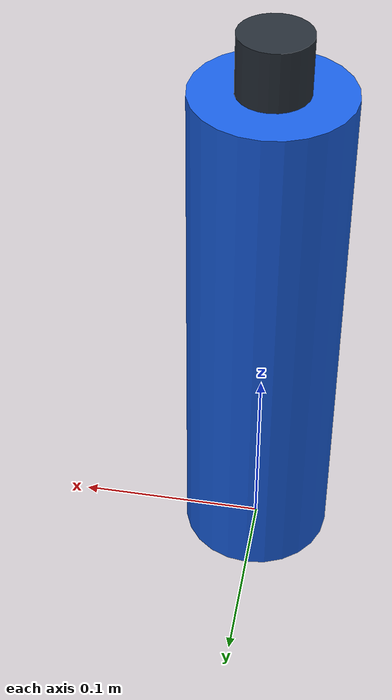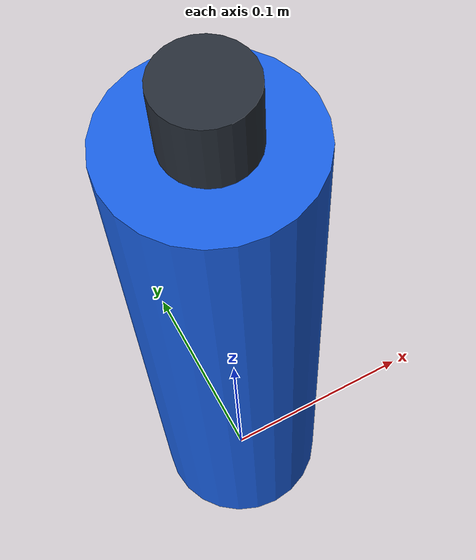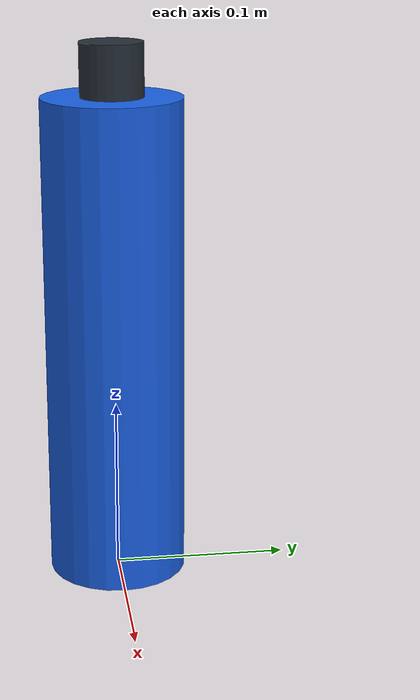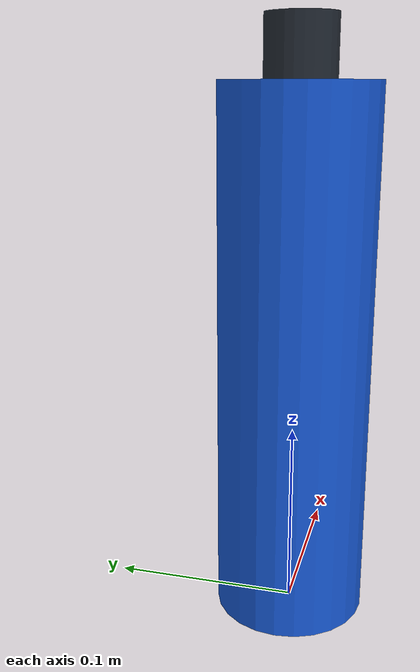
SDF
<?xml version="1.0"?>
<sdf version="1.8">
  <model name="trash_plastic_bottle">
    <static>true</static>
    <link name="trash_plastic_bottle_link">
      <inertial>
        <mass>0.05</mass>
        <inertia>
          <ixx>0.0002</ixx>
          <ixy>0.0</ixy>
          <ixz>0.0</ixz>
          <iyy>0.0002</iyy>
          <iyz>0.0</iyz>
          <izz>0.0002</izz>
        </inertia>
      </inertial>
      <collision name="trash_plastic_bottle_collision">
        <pose>0 0 0.14 0 0 0</pose>
        <geometry>
<cylinder><radius>0.04</radius><length>0.28</length></cylinder>
        </geometry>
      </collision>
    <visual name="bottle_body">
      <pose>0 0 0.14 0 0 0</pose>
      <geometry>
<cylinder><radius>0.04</radius><length>0.28</length></cylinder>
      </geometry>
      <material>
        <ambient>0.10 0.38 0.90 1</ambient>
        <diffuse>0.10 0.38 0.90 1</diffuse>
        <specular>0.1 0.1 0.1 1</specular>
      </material>
    </visual>
    <visual name="bottle_cap">
      <pose>0 0 0.295 0 0 0</pose>
      <geometry>
<cylinder><radius>0.018</radius><length>0.03</length></cylinder>
      </geometry>
      <material>
        <ambient>0.15 0.18 0.22 1</ambient>
        <diffuse>0.15 0.18 0.22 1</diffuse>
        <specular>0.1 0.1 0.1 1</specular>
      </material>
    </visual>
    </link>
  </model>
</sdf>
